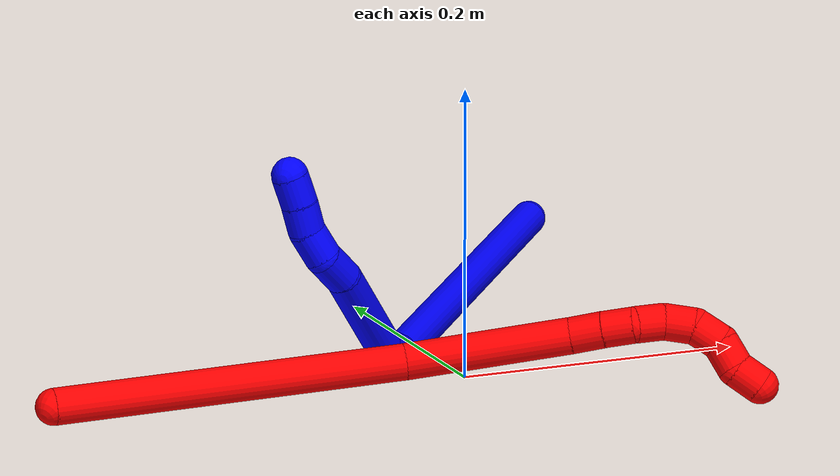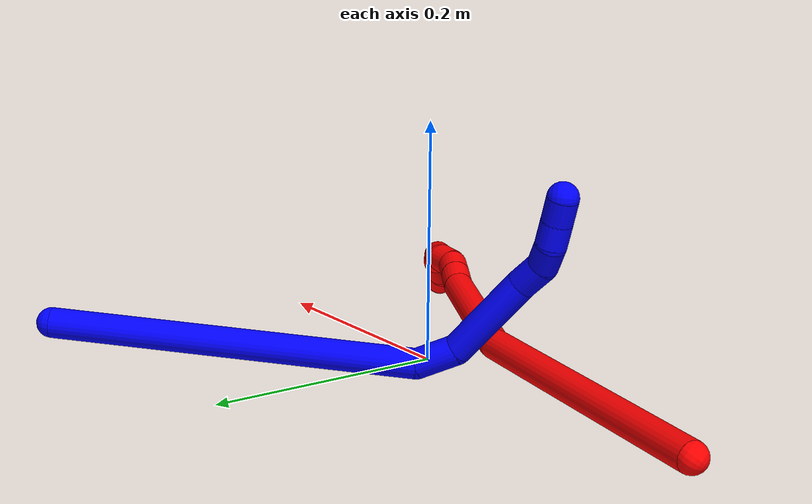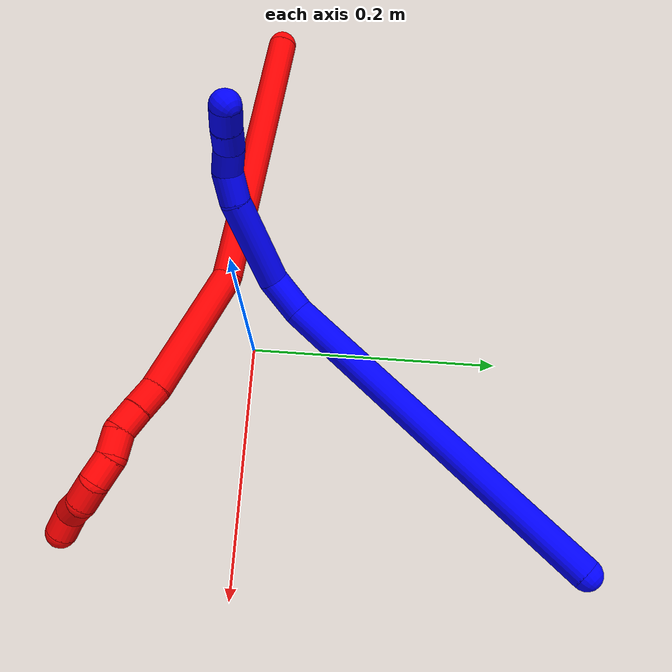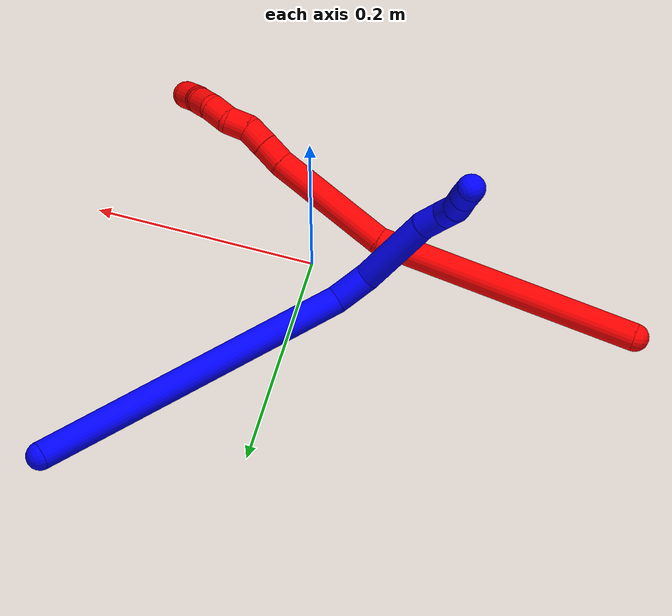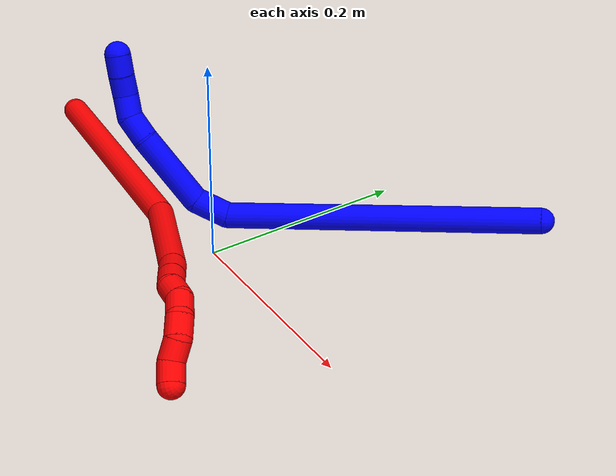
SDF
<sdf version="1.7">
 <world name="default">
  <plugin name="TubeGeneratorPlugin" filename="libtube_generator_plugin.so"/>
  <model name="photoneo_s_sensor">
   <static>1</static>
   <pose>0 0 2 1.57079 1.57079 3.14159</pose>
   <link name="link">
    <inertial><mass>0.1</mass></inertial>
    <sensor name="sensor" type="depth">
     <update_rate>30</update_rate>
     <camera>
      <horizontal_fov>1.22</horizontal_fov>
      <image><width>1920</width><height>1200</height><format>B8G8R8</format></image>
      <clip><near>0.1</near><far>4</far></clip>
      <depth_camera><output>points</output></depth_camera>
     </camera>
     <plugin name="camera_plugin" filename="libgazebo_ros_depth_camera.so">
      <baseline>0.2</baseline>
      <alwaysOn>1</alwaysOn>
      <updateRate>0.0</updateRate>
      <cameraName>camera_ir</cameraName>
      <imageTopicName>/camera/color/image_raw</imageTopicName>
      <cameraInfoTopicName>/camera/color/camera_info</cameraInfoTopicName>
      <depthImageTopicName>/camera/depth/image_raw</depthImageTopicName>
      <depthImageCameraInfoTopicName>/camera/depth/camera_info</depthImageCameraInfoTopicName>
      <pointCloudTopicName>/camera/depth/points</pointCloudTopicName>
      <frameName>fr_optical</frameName>
      <pointCloudCutoff>0.1</pointCloudCutoff>
      <pointCloudCutoffMax>2.0</pointCloudCutoffMax>
      <distortionK1>0</distortionK1>
      <distortionK2>0</distortionK2>
      <distortionK3>0</distortionK3>
      <distortionT1>0</distortionT1>
      <distortionT2>0</distortionT2>
      <CxPrime>0</CxPrime>
      <Cx>0</Cx>
      <Cy>0</Cy>
      <focalLength>0</focalLength>
      <hackBaseline>0</hackBaseline>
     </plugin>
    </sensor>
   </link>
  </model>
  <gravity>0 0 -9.8</gravity>
  <magnetic_field>6e-06 2.3e-05 -4.2e-05</magnetic_field>
  <atmosphere type="adiabatic"/>
  <physics name="default_physics" default="0" type="ode">
   <max_step_size>0.003</max_step_size>
   <real_time_factor>1</real_time_factor>
   <real_time_update_rate>1000</real_time_update_rate>
   <max_contacts>10000</max_contacts>
   <ode>
    <solver>
     <type>quick</type>
     <iters>100</iters>
     <sor>1.3</sor>
     <use_dynamic_moi_rescaling>0</use_dynamic_moi_rescaling>
    </solver>
    <constraints>
     <contact_max_correcting_vel>0</contact_max_correcting_vel>
     <contact_surface_layer>0.001</contact_surface_layer>
     <cfm>0</cfm>
     <erp>0.2</erp>
    </constraints>
   </ode>
  </physics>
  <scene><ambient>0.4 0.4 0.4 1</ambient><background>0.7 0.7 0.7 1</background><shadows>0</shadows></scene>
  <audio><device>default</device></audio>
  <spherical_coordinates>
   <surface_model>EARTH_WGS84</surface_model>
   <latitude_deg>0</latitude_deg>
   <longitude_deg>0</longitude_deg>
   <elevation>0</elevation>
   <heading_deg>0</heading_deg>
  </spherical_coordinates>
  <model name="bin">
   <static>1</static>
   <link name="bottom">
    <collision name="collision-bottom">
     <pose>0 0 -0.01 0 -0 0</pose>
     <geometry><box><size>0.8 0.6 0.02</size></box></geometry>
     <surface>
      <friction><ode><mu>100</mu><mu2>100</mu2></ode></friction>
      <contact><collide_bitmask>65535</collide_bitmask></contact>
     </surface>
    </collision>
   </link>
   <link name="west_wall">
    <collision name="collision-west_wall">
     <pose>-0.41 0 0.1 0 -0 0</pose>
     <geometry><box><size>0.02 0.6 0.2</size></box></geometry>
     <surface>
      <friction><ode><mu>100</mu><mu2>100</mu2></ode></friction>
      <contact><collide_bitmask>65535</collide_bitmask></contact>
     </surface>
    </collision>
   </link>
   <link name="east_wall">
    <collision name="collision-east_wall">
     <pose>0.41 0 0.1 0 -0 0</pose>
     <geometry><box><size>0.02 0.6 0.2</size></box></geometry>
     <surface>
      <friction><ode><mu>100</mu><mu2>100</mu2></ode></friction>
      <contact><collide_bitmask>65535</collide_bitmask></contact>
     </surface>
    </collision>
   </link>
   <link name="south_wall">
    <collision name="collision-south_wall">
     <pose>0 -0.31 0.1 0 -0 0</pose>
     <geometry><box><size>0.8 0.02 0.2</size></box></geometry>
     <surface>
      <friction><ode><mu>100</mu><mu2>100</mu2></ode></friction>
      <contact><collide_bitmask>65535</collide_bitmask></contact>
     </surface>
    </collision>
   </link>
   <link name="north_wall">
    <collision name="collision-north_wall">
     <pose>0 0.31 0.1 0 -0 0</pose>
     <geometry><box><size>0.8 0.02 0.2</size></box></geometry>
     <surface>
      <friction><ode><mu>100</mu><mu2>100</mu2></ode></friction>
      <contact><collide_bitmask>65535</collide_bitmask></contact>
     </surface>
    </collision>
   </link>
  </model>
  <model name="1">
   <static>0</static>
   <link name="1">
    <collision name="collision-cylinder-e_1_1_4">
     <pose>0.002213 0.011936 0.149964 -0.079422 0.014709 -0.000584</pose>
     <geometry><cylinder><radius>0.0125</radius><length>0.300909</length></cylinder></geometry>
     <surface>
      <friction><ode><mu>1.16</mu><mu2>1.16</mu2><slip1>0</slip1><slip2>0</slip2></ode></friction>
      <contact><ode><kp>1e+06</kp><kd>1</kd><max_vel>0</max_vel><min_depth>0.001</min_depth></ode></contact>
     </surface>
    </collision>
    <visual name="visual-cylinder-e_1_1_4">
     <pose>0.002213 0.011936 0.149964 -0.079422 0.014709 -0.000584</pose>
     <geometry><cylinder><radius>0.0125</radius><length>0.300909</length></cylinder></geometry>
     <material><ambient>0 0 1 1</ambient></material>
    </visual>
    <collision name="collision-cylinder-e_2_4_5">
     <pose>-0.003429 0.025331 0.315212 -0.095199 -0.472888 0.022955</pose>
     <geometry><cylinder><radius>0.0125</radius><length>0.034491</length></cylinder></geometry>
     <surface>
      <friction><ode><mu>1.16</mu><mu2>1.16</mu2><slip1>0</slip1><slip2>0</slip2></ode></friction>
      <contact><ode><kp>1e+06</kp><kd>1</kd><max_vel>0</max_vel><min_depth>0.001</min_depth></ode></contact>
     </surface>
    </collision>
    <visual name="visual-cylinder-e_2_4_5">
     <pose>-0.003429 0.025331 0.315212 -0.095199 -0.472888 0.022955</pose>
     <geometry><cylinder><radius>0.0125</radius><length>0.034491</length></cylinder></geometry>
     <material><ambient>0 0 1 1</ambient></material>
    </visual>
    <collision name="collision-cylinder-e_3_5_6">
     <pose>-0.042561 0.02739 0.353451 -0.026156 -0.937495 0.013246</pose>
     <geometry><cylinder><radius>0.0125</radius><length>0.077606</length></cylinder></geometry>
     <surface>
      <friction><ode><mu>1.16</mu><mu2>1.16</mu2><slip1>0</slip1><slip2>0</slip2></ode></friction>
      <contact><ode><kp>1e+06</kp><kd>1</kd><max_vel>0</max_vel><min_depth>0.001</min_depth></ode></contact>
     </surface>
    </collision>
    <visual name="visual-cylinder-e_3_5_6">
     <pose>-0.042561 0.02739 0.353451 -0.026156 -0.937495 0.013246</pose>
     <geometry><cylinder><radius>0.0125</radius><length>0.077606</length></cylinder></geometry>
     <material><ambient>0 0 1 1</ambient></material>
    </visual>
    <collision name="collision-cylinder-e_4_6_7">
     <pose>-0.083442 0.025525 0.383935 0.316497 -0.881015 -0.150172</pose>
     <geometry><cylinder><radius>0.0125</radius><length>0.024897</length></cylinder></geometry>
     <surface>
      <friction><ode><mu>1.16</mu><mu2>1.16</mu2><slip1>0</slip1><slip2>0</slip2></ode></friction>
      <contact><ode><kp>1e+06</kp><kd>1</kd><max_vel>0</max_vel><min_depth>0.001</min_depth></ode></contact>
     </surface>
    </collision>
    <visual name="visual-cylinder-e_4_6_7">
     <pose>-0.083442 0.025525 0.383935 0.316497 -0.881015 -0.150172</pose>
     <geometry><cylinder><radius>0.0125</radius><length>0.024897</length></cylinder></geometry>
     <material><ambient>0 0 1 1</ambient></material>
    </visual>
    <collision name="collision-cylinder-e_5_7_8">
     <pose>-0.10313 0.01983 0.393879 0.928829 -1.19036 -0.654026</pose>
     <geometry><cylinder><radius>0.0125</radius><length>0.021724</length></cylinder></geometry>
     <surface>
      <friction><ode><mu>1.16</mu><mu2>1.16</mu2><slip1>0</slip1><slip2>0</slip2></ode></friction>
      <contact><ode><kp>1e+06</kp><kd>1</kd><max_vel>0</max_vel><min_depth>0.001</min_depth></ode></contact>
     </surface>
    </collision>
    <visual name="visual-cylinder-e_5_7_8">
     <pose>-0.10313 0.01983 0.393879 0.928829 -1.19036 -0.654026</pose>
     <geometry><cylinder><radius>0.0125</radius><length>0.021724</length></cylinder></geometry>
     <material><ambient>0 0 1 1</ambient></material>
    </visual>
    <collision name="collision-cylinder-e_6_8_9">
     <pose>-0.123122 0.016212 0.397689 0.270688 -1.42568 -0.234366</pose>
     <geometry><cylinder><radius>0.0125</radius><length>0.020024</length></cylinder></geometry>
     <surface>
      <friction><ode><mu>1.16</mu><mu2>1.16</mu2><slip1>0</slip1><slip2>0</slip2></ode></friction>
      <contact><ode><kp>1e+06</kp><kd>1</kd><max_vel>0</max_vel><min_depth>0.001</min_depth></ode></contact>
     </surface>
    </collision>
    <visual name="visual-cylinder-e_6_8_9">
     <pose>-0.123122 0.016212 0.397689 0.270688 -1.42568 -0.234366</pose>
     <geometry><cylinder><radius>0.0125</radius><length>0.020024</length></cylinder></geometry>
     <material><ambient>0 0 1 1</ambient></material>
    </visual>
    <collision name="collision-cylinder-e_7_9_2">
     <pose>-0.143051 0.014704 0.400435 0.692612 -1.39743 -0.588682</pose>
     <geometry><cylinder><radius>0.0125</radius><length>0.020349</length></cylinder></geometry>
     <surface>
      <friction><ode><mu>1.16</mu><mu2>1.16</mu2><slip1>0</slip1><slip2>0</slip2></ode></friction>
      <contact><ode><kp>1e+06</kp><kd>1</kd><max_vel>0</max_vel><min_depth>0.001</min_depth></ode></contact>
     </surface>
    </collision>
    <visual name="visual-cylinder-e_7_9_2">
     <pose>-0.143051 0.014704 0.400435 0.692612 -1.39743 -0.588682</pose>
     <geometry><cylinder><radius>0.0125</radius><length>0.020349</length></cylinder></geometry>
     <material><ambient>0 0 1 1</ambient></material>
    </visual>
    <collision name="collision-sphere-2">
     <pose>-0.153073 0.013583 0.401785 0 -0 0</pose>
     <geometry><sphere><radius>0.0125</radius></sphere></geometry>
     <surface>
      <friction><ode><mu>1.16</mu><mu2>1.16</mu2><slip1>0</slip1><slip2>0</slip2></ode></friction>
      <contact><ode><kp>1e+06</kp><kd>1</kd><max_vel>0</max_vel><min_depth>0.001</min_depth></ode></contact>
     </surface>
    </collision>
    <visual name="visual-sphere-2">
     <pose>-0.153073 0.013583 0.401785 0 -0 0</pose>
     <geometry><sphere><radius>0.0125</radius></sphere></geometry>
     <material><ambient>0 0 1 1</ambient></material>
    </visual>
    <collision name="collision-sphere-9">
     <pose>-0.133029 0.015825 0.399084 0 -0 0</pose>
     <geometry><sphere><radius>0.0125</radius></sphere></geometry>
     <surface>
      <friction><ode><mu>1.16</mu><mu2>1.16</mu2><slip1>0</slip1><slip2>0</slip2></ode></friction>
      <contact><ode><kp>1e+06</kp><kd>1</kd><max_vel>0</max_vel><min_depth>0.001</min_depth></ode></contact>
     </surface>
    </collision>
    <visual name="visual-sphere-9">
     <pose>-0.133029 0.015825 0.399084 0 -0 0</pose>
     <geometry><sphere><radius>0.0125</radius></sphere></geometry>
     <material><ambient>0 0 1 1</ambient></material>
    </visual>
    <collision name="collision-sphere-4">
     <pose>0.004426 0.023871 0.299928 0 -0 0</pose>
     <geometry><sphere><radius>0.0125</radius></sphere></geometry>
     <surface>
      <friction><ode><mu>1.16</mu><mu2>1.16</mu2><slip1>0</slip1><slip2>0</slip2></ode></friction>
      <contact><ode><kp>1e+06</kp><kd>1</kd><max_vel>0</max_vel><min_depth>0.001</min_depth></ode></contact>
     </surface>
    </collision>
    <visual name="visual-sphere-4">
     <pose>0.004426 0.023871 0.299928 0 -0 0</pose>
     <geometry><sphere><radius>0.0125</radius></sphere></geometry>
     <material><ambient>0 0 1 1</ambient></material>
    </visual>
    <collision name="collision-sphere-1">
     <geometry><sphere><radius>0.0125</radius></sphere></geometry>
     <surface>
      <friction><ode><mu>1.16</mu><mu2>1.16</mu2><slip1>0</slip1><slip2>0</slip2></ode></friction>
      <contact><ode><kp>1e+06</kp><kd>1</kd><max_vel>0</max_vel><min_depth>0.001</min_depth></ode></contact>
     </surface>
    </collision>
    <visual name="visual-sphere-1">
     <geometry><sphere><radius>0.0125</radius></sphere></geometry>
     <material><ambient>0 0 1 1</ambient></material>
    </visual>
    <collision name="collision-sphere-8">
     <pose>-0.113216 0.016599 0.396294 0 -0 0</pose>
     <geometry><sphere><radius>0.0125</radius></sphere></geometry>
     <surface>
      <friction><ode><mu>1.16</mu><mu2>1.16</mu2><slip1>0</slip1><slip2>0</slip2></ode></friction>
      <contact><ode><kp>1e+06</kp><kd>1</kd><max_vel>0</max_vel><min_depth>0.001</min_depth></ode></contact>
     </surface>
    </collision>
    <visual name="visual-sphere-8">
     <pose>-0.113216 0.016599 0.396294 0 -0 0</pose>
     <geometry><sphere><radius>0.0125</radius></sphere></geometry>
     <material><ambient>0 0 1 1</ambient></material>
    </visual>
    <collision name="collision-sphere-5">
     <pose>-0.011283 0.02679 0.330495 0 -0 0</pose>
     <geometry><sphere><radius>0.0125</radius></sphere></geometry>
     <surface>
      <friction><ode><mu>1.16</mu><mu2>1.16</mu2><slip1>0</slip1><slip2>0</slip2></ode></friction>
      <contact><ode><kp>1e+06</kp><kd>1</kd><max_vel>0</max_vel><min_depth>0.001</min_depth></ode></contact>
     </surface>
    </collision>
    <visual name="visual-sphere-5">
     <pose>-0.011283 0.02679 0.330495 0 -0 0</pose>
     <geometry><sphere><radius>0.0125</radius></sphere></geometry>
     <material><ambient>0 0 1 1</ambient></material>
    </visual>
    <collision name="collision-sphere-6">
     <pose>-0.07384 0.027991 0.376407 0 -0 0</pose>
     <geometry><sphere><radius>0.0125</radius></sphere></geometry>
     <surface>
      <friction><ode><mu>1.16</mu><mu2>1.16</mu2><slip1>0</slip1><slip2>0</slip2></ode></friction>
      <contact><ode><kp>1e+06</kp><kd>1</kd><max_vel>0</max_vel><min_depth>0.001</min_depth></ode></contact>
     </surface>
    </collision>
    <visual name="visual-sphere-6">
     <pose>-0.07384 0.027991 0.376407 0 -0 0</pose>
     <geometry><sphere><radius>0.0125</radius></sphere></geometry>
     <material><ambient>0 0 1 1</ambient></material>
    </visual>
    <collision name="collision-sphere-7">
     <pose>-0.093045 0.02306 0.391464 0 -0 0</pose>
     <geometry><sphere><radius>0.0125</radius></sphere></geometry>
     <surface>
      <friction><ode><mu>1.16</mu><mu2>1.16</mu2><slip1>0</slip1><slip2>0</slip2></ode></friction>
      <contact><ode><kp>1e+06</kp><kd>1</kd><max_vel>0</max_vel><min_depth>0.001</min_depth></ode></contact>
     </surface>
    </collision>
    <visual name="visual-sphere-7">
     <pose>-0.093045 0.02306 0.391464 0 -0 0</pose>
     <geometry><sphere><radius>0.0125</radius></sphere></geometry>
     <material><ambient>0 0 1 1</ambient></material>
    </visual>
    <inertial>
     <pose>-0.024899 0.016562 0.235309 0 -0 0</pose>
     <mass>0.5</mass>
     <inertia>
      <ixx>0.0023</ixx>
      <ixy>0</ixy>
      <ixz>0</ixz>
      <iyy>0.002328</iyy>
      <iyz>0</iyz>
      <izz>-0.000141</izz>
     </inertia>
    </inertial>
   </link>
   <pose>0.163416 0.262286 0.034938 2.07869 1.41898 -0.290939</pose>
  </model>
  <model name="2">
   <static>0</static>
   <link name="2">
    <collision name="collision-cylinder-e_1_1_4">
     <pose>0.067372 -0.048595 -0.087688 2.63554 0.591703 1.73455</pose>
     <geometry><cylinder><radius>0.0125</radius><length>0.241575</length></cylinder></geometry>
     <surface>
      <friction><ode><mu>1.16</mu><mu2>1.16</mu2><slip1>0</slip1><slip2>0</slip2></ode></friction>
      <contact><ode><kp>1e+06</kp><kd>1</kd><max_vel>0</max_vel><min_depth>0.001</min_depth></ode></contact>
     </surface>
    </collision>
    <visual name="visual-cylinder-e_1_1_4">
     <pose>0.067372 -0.048595 -0.087688 2.63554 0.591703 1.73455</pose>
     <geometry><cylinder><radius>0.0125</radius><length>0.241575</length></cylinder></geometry>
     <material><ambient>1 0 0 1</ambient></material>
    </visual>
    <collision name="collision-cylinder-e_2_4_5">
     <pose>0.178185 -0.109485 -0.209249 2.79344 0.878302 2.42516</pose>
     <geometry><cylinder><radius>0.0125</radius><length>0.112883</length></cylinder></geometry>
     <surface>
      <friction><ode><mu>1.16</mu><mu2>1.16</mu2><slip1>0</slip1><slip2>0</slip2></ode></friction>
      <contact><ode><kp>1e+06</kp><kd>1</kd><max_vel>0</max_vel><min_depth>0.001</min_depth></ode></contact>
     </surface>
    </collision>
    <visual name="visual-cylinder-e_2_4_5">
     <pose>0.178185 -0.109485 -0.209249 2.79344 0.878302 2.42516</pose>
     <geometry><cylinder><radius>0.0125</radius><length>0.112883</length></cylinder></geometry>
     <material><ambient>1 0 0 1</ambient></material>
    </visual>
    <collision name="collision-cylinder-e_3_5_6">
     <pose>0.231069 -0.123002 -0.249013 2.93688 1.00353 2.7714</pose>
     <geometry><cylinder><radius>0.0125</radius><length>0.022395</length></cylinder></geometry>
     <surface>
      <friction><ode><mu>1.16</mu><mu2>1.16</mu2><slip1>0</slip1><slip2>0</slip2></ode></friction>
      <contact><ode><kp>1e+06</kp><kd>1</kd><max_vel>0</max_vel><min_depth>0.001</min_depth></ode></contact>
     </surface>
    </collision>
    <visual name="visual-cylinder-e_3_5_6">
     <pose>0.231069 -0.123002 -0.249013 2.93688 1.00353 2.7714</pose>
     <geometry><cylinder><radius>0.0125</radius><length>0.022395</length></cylinder></geometry>
     <material><ambient>1 0 0 1</ambient></material>
    </visual>
    <collision name="collision-cylinder-e_4_6_7">
     <pose>0.249421 -0.125799 -0.260405 2.86284 0.999908 2.63882</pose>
     <geometry><cylinder><radius>0.0125</radius><length>0.021174</length></cylinder></geometry>
     <surface>
      <friction><ode><mu>1.16</mu><mu2>1.16</mu2><slip1>0</slip1><slip2>0</slip2></ode></friction>
      <contact><ode><kp>1e+06</kp><kd>1</kd><max_vel>0</max_vel><min_depth>0.001</min_depth></ode></contact>
     </surface>
    </collision>
    <visual name="visual-cylinder-e_4_6_7">
     <pose>0.249421 -0.125799 -0.260405 2.86284 0.999908 2.63882</pose>
     <geometry><cylinder><radius>0.0125</radius><length>0.021174</length></cylinder></geometry>
     <material><ambient>1 0 0 1</ambient></material>
    </visual>
    <collision name="collision-cylinder-e_5_7_8">
     <pose>0.264242 -0.131424 -0.273118 2.6299 0.620581 1.77301</pose>
     <geometry><cylinder><radius>0.0125</radius><length>0.020337</length></cylinder></geometry>
     <surface>
      <friction><ode><mu>1.16</mu><mu2>1.16</mu2><slip1>0</slip1><slip2>0</slip2></ode></friction>
      <contact><ode><kp>1e+06</kp><kd>1</kd><max_vel>0</max_vel><min_depth>0.001</min_depth></ode></contact>
     </surface>
    </collision>
    <visual name="visual-cylinder-e_5_7_8">
     <pose>0.264242 -0.131424 -0.273118 2.6299 0.620581 1.77301</pose>
     <geometry><cylinder><radius>0.0125</radius><length>0.020337</length></cylinder></geometry>
     <material><ambient>1 0 0 1</ambient></material>
    </visual>
    <collision name="collision-cylinder-e_6_8_9">
     <pose>0.278907 -0.140004 -0.284424 2.3057 0.961705 1.73111</pose>
     <geometry><cylinder><radius>0.0125</radius><length>0.021342</length></cylinder></geometry>
     <surface>
      <friction><ode><mu>1.16</mu><mu2>1.16</mu2><slip1>0</slip1><slip2>0</slip2></ode></friction>
      <contact><ode><kp>1e+06</kp><kd>1</kd><max_vel>0</max_vel><min_depth>0.001</min_depth></ode></contact>
     </surface>
    </collision>
    <visual name="visual-cylinder-e_6_8_9">
     <pose>0.278907 -0.140004 -0.284424 2.3057 0.961705 1.73111</pose>
     <geometry><cylinder><radius>0.0125</radius><length>0.021342</length></cylinder></geometry>
     <material><ambient>1 0 0 1</ambient></material>
    </visual>
    <collision name="collision-cylinder-e_7_9_10">
     <pose>0.294984 -0.151501 -0.289144 1.66045 0.808352 0.875281</pose>
     <geometry><cylinder><radius>0.0125</radius><length>0.020256</length></cylinder></geometry>
     <surface>
      <friction><ode><mu>1.16</mu><mu2>1.16</mu2><slip1>0</slip1><slip2>0</slip2></ode></friction>
      <contact><ode><kp>1e+06</kp><kd>1</kd><max_vel>0</max_vel><min_depth>0.001</min_depth></ode></contact>
     </surface>
    </collision>
    <visual name="visual-cylinder-e_7_9_10">
     <pose>0.294984 -0.151501 -0.289144 1.66045 0.808352 0.875281</pose>
     <geometry><cylinder><radius>0.0125</radius><length>0.020256</length></cylinder></geometry>
     <material><ambient>1 0 0 1</ambient></material>
    </visual>
    <collision name="collision-cylinder-e_8_10_11">
     <pose>0.307936 -0.165809 -0.285932 1.08905 0.596793 0.368317</pose>
     <geometry><cylinder><radius>0.0125</radius><length>0.02003</length></cylinder></geometry>
     <surface>
      <friction><ode><mu>1.16</mu><mu2>1.16</mu2><slip1>0</slip1><slip2>0</slip2></ode></friction>
      <contact><ode><kp>1e+06</kp><kd>1</kd><max_vel>0</max_vel><min_depth>0.001</min_depth></ode></contact>
     </surface>
    </collision>
    <visual name="visual-cylinder-e_8_10_11">
     <pose>0.307936 -0.165809 -0.285932 1.08905 0.596793 0.368317</pose>
     <geometry><cylinder><radius>0.0125</radius><length>0.02003</length></cylinder></geometry>
     <material><ambient>1 0 0 1</ambient></material>
    </visual>
    <collision name="collision-cylinder-e_9_11_2">
     <pose>0.320202 -0.180596 -0.28285 1.67199 0.725485 0.7953</pose>
     <geometry><cylinder><radius>0.0125</radius><length>0.020008</length></cylinder></geometry>
     <surface>
      <friction><ode><mu>1.16</mu><mu2>1.16</mu2><slip1>0</slip1><slip2>0</slip2></ode></friction>
      <contact><ode><kp>1e+06</kp><kd>1</kd><max_vel>0</max_vel><min_depth>0.001</min_depth></ode></contact>
     </surface>
    </collision>
    <visual name="visual-cylinder-e_9_11_2">
     <pose>0.320202 -0.180596 -0.28285 1.67199 0.725485 0.7953</pose>
     <geometry><cylinder><radius>0.0125</radius><length>0.020008</length></cylinder></geometry>
     <material><ambient>1 0 0 1</ambient></material>
    </visual>
    <collision name="collision-sphere-2">
     <pose>0.32684 -0.188043 -0.283606 0 -0 0</pose>
     <geometry><sphere><radius>0.0125</radius></sphere></geometry>
     <surface>
      <friction><ode><mu>1.16</mu><mu2>1.16</mu2><slip1>0</slip1><slip2>0</slip2></ode></friction>
      <contact><ode><kp>1e+06</kp><kd>1</kd><max_vel>0</max_vel><min_depth>0.001</min_depth></ode></contact>
     </surface>
    </collision>
    <visual name="visual-sphere-2">
     <pose>0.32684 -0.188043 -0.283606 0 -0 0</pose>
     <geometry><sphere><radius>0.0125</radius></sphere></geometry>
     <material><ambient>1 0 0 1</ambient></material>
    </visual>
    <collision name="collision-sphere-11">
     <pose>0.313564 -0.17315 -0.282094 0 -0 0</pose>
     <geometry><sphere><radius>0.0125</radius></sphere></geometry>
     <surface>
      <friction><ode><mu>1.16</mu><mu2>1.16</mu2><slip1>0</slip1><slip2>0</slip2></ode></friction>
      <contact><ode><kp>1e+06</kp><kd>1</kd><max_vel>0</max_vel><min_depth>0.001</min_depth></ode></contact>
     </surface>
    </collision>
    <visual name="visual-sphere-11">
     <pose>0.313564 -0.17315 -0.282094 0 -0 0</pose>
     <geometry><sphere><radius>0.0125</radius></sphere></geometry>
     <material><ambient>1 0 0 1</ambient></material>
    </visual>
    <collision name="collision-sphere-10">
     <pose>0.302308 -0.158468 -0.28977 0 -0 0</pose>
     <geometry><sphere><radius>0.0125</radius></sphere></geometry>
     <surface>
      <friction><ode><mu>1.16</mu><mu2>1.16</mu2><slip1>0</slip1><slip2>0</slip2></ode></friction>
      <contact><ode><kp>1e+06</kp><kd>1</kd><max_vel>0</max_vel><min_depth>0.001</min_depth></ode></contact>
     </surface>
    </collision>
    <visual name="visual-sphere-10">
     <pose>0.302308 -0.158468 -0.28977 0 -0 0</pose>
     <geometry><sphere><radius>0.0125</radius></sphere></geometry>
     <material><ambient>1 0 0 1</ambient></material>
    </visual>
    <collision name="collision-sphere-9">
     <pose>0.28766 -0.144533 -0.288518 0 -0 0</pose>
     <geometry><sphere><radius>0.0125</radius></sphere></geometry>
     <surface>
      <friction><ode><mu>1.16</mu><mu2>1.16</mu2><slip1>0</slip1><slip2>0</slip2></ode></friction>
      <contact><ode><kp>1e+06</kp><kd>1</kd><max_vel>0</max_vel><min_depth>0.001</min_depth></ode></contact>
     </surface>
    </collision>
    <visual name="visual-sphere-9">
     <pose>0.28766 -0.144533 -0.288518 0 -0 0</pose>
     <geometry><sphere><radius>0.0125</radius></sphere></geometry>
     <material><ambient>1 0 0 1</ambient></material>
    </visual>
    <collision name="collision-sphere-4">
     <pose>0.134745 -0.097191 -0.175375 0 -0 0</pose>
     <geometry><sphere><radius>0.0125</radius></sphere></geometry>
     <surface>
      <friction><ode><mu>1.16</mu><mu2>1.16</mu2><slip1>0</slip1><slip2>0</slip2></ode></friction>
      <contact><ode><kp>1e+06</kp><kd>1</kd><max_vel>0</max_vel><min_depth>0.001</min_depth></ode></contact>
     </surface>
    </collision>
    <visual name="visual-sphere-4">
     <pose>0.134745 -0.097191 -0.175375 0 -0 0</pose>
     <geometry><sphere><radius>0.0125</radius></sphere></geometry>
     <material><ambient>1 0 0 1</ambient></material>
    </visual>
    <collision name="collision-sphere-1">
     <geometry><sphere><radius>0.0125</radius></sphere></geometry>
     <surface>
      <friction><ode><mu>1.16</mu><mu2>1.16</mu2><slip1>0</slip1><slip2>0</slip2></ode></friction>
      <contact><ode><kp>1e+06</kp><kd>1</kd><max_vel>0</max_vel><min_depth>0.001</min_depth></ode></contact>
     </surface>
    </collision>
    <visual name="visual-sphere-1">
     <geometry><sphere><radius>0.0125</radius></sphere></geometry>
     <material><ambient>1 0 0 1</ambient></material>
    </visual>
    <collision name="collision-sphere-8">
     <pose>0.270155 -0.135474 -0.28033 0 -0 0</pose>
     <geometry><sphere><radius>0.0125</radius></sphere></geometry>
     <surface>
      <friction><ode><mu>1.16</mu><mu2>1.16</mu2><slip1>0</slip1><slip2>0</slip2></ode></friction>
      <contact><ode><kp>1e+06</kp><kd>1</kd><max_vel>0</max_vel><min_depth>0.001</min_depth></ode></contact>
     </surface>
    </collision>
    <visual name="visual-sphere-8">
     <pose>0.270155 -0.135474 -0.28033 0 -0 0</pose>
     <geometry><sphere><radius>0.0125</radius></sphere></geometry>
     <material><ambient>1 0 0 1</ambient></material>
    </visual>
    <collision name="collision-sphere-5">
     <pose>0.221626 -0.121779 -0.243122 0 -0 0</pose>
     <geometry><sphere><radius>0.0125</radius></sphere></geometry>
     <surface>
      <friction><ode><mu>1.16</mu><mu2>1.16</mu2><slip1>0</slip1><slip2>0</slip2></ode></friction>
      <contact><ode><kp>1e+06</kp><kd>1</kd><max_vel>0</max_vel><min_depth>0.001</min_depth></ode></contact>
     </surface>
    </collision>
    <visual name="visual-sphere-5">
     <pose>0.221626 -0.121779 -0.243122 0 -0 0</pose>
     <geometry><sphere><radius>0.0125</radius></sphere></geometry>
     <material><ambient>1 0 0 1</ambient></material>
    </visual>
    <collision name="collision-sphere-6">
     <pose>0.240513 -0.124225 -0.254904 0 -0 0</pose>
     <geometry><sphere><radius>0.0125</radius></sphere></geometry>
     <surface>
      <friction><ode><mu>1.16</mu><mu2>1.16</mu2><slip1>0</slip1><slip2>0</slip2></ode></friction>
      <contact><ode><kp>1e+06</kp><kd>1</kd><max_vel>0</max_vel><min_depth>0.001</min_depth></ode></contact>
     </surface>
    </collision>
    <visual name="visual-sphere-6">
     <pose>0.240513 -0.124225 -0.254904 0 -0 0</pose>
     <geometry><sphere><radius>0.0125</radius></sphere></geometry>
     <material><ambient>1 0 0 1</ambient></material>
    </visual>
    <collision name="collision-sphere-7">
     <pose>0.258329 -0.127373 -0.265905 0 -0 0</pose>
     <geometry><sphere><radius>0.0125</radius></sphere></geometry>
     <surface>
      <friction><ode><mu>1.16</mu><mu2>1.16</mu2><slip1>0</slip1><slip2>0</slip2></ode></friction>
      <contact><ode><kp>1e+06</kp><kd>1</kd><max_vel>0</max_vel><min_depth>0.001</min_depth></ode></contact>
     </surface>
    </collision>
    <visual name="visual-sphere-7">
     <pose>0.258329 -0.127373 -0.265905 0 -0 0</pose>
     <geometry><sphere><radius>0.0125</radius></sphere></geometry>
     <material><ambient>1 0 0 1</ambient></material>
    </visual>
    <inertial>
     <pose>0.153443 -0.090361 -0.169524 0 -0 0</pose>
     <mass>0.5</mass>
     <inertia>
      <ixx>0.000833</ixx>
      <ixy>0</ixy>
      <ixz>0</ixz>
      <iyy>0.001614</iyy>
      <iyz>0</iyz>
      <izz>-0.000278</izz>
     </inertia>
    </inertial>
   </link>
   <pose>-0.294757 -0.000454 0.012023 2.08552 -0.071878 -1.08677</pose>
  </model>
 </world>
</sdf>
